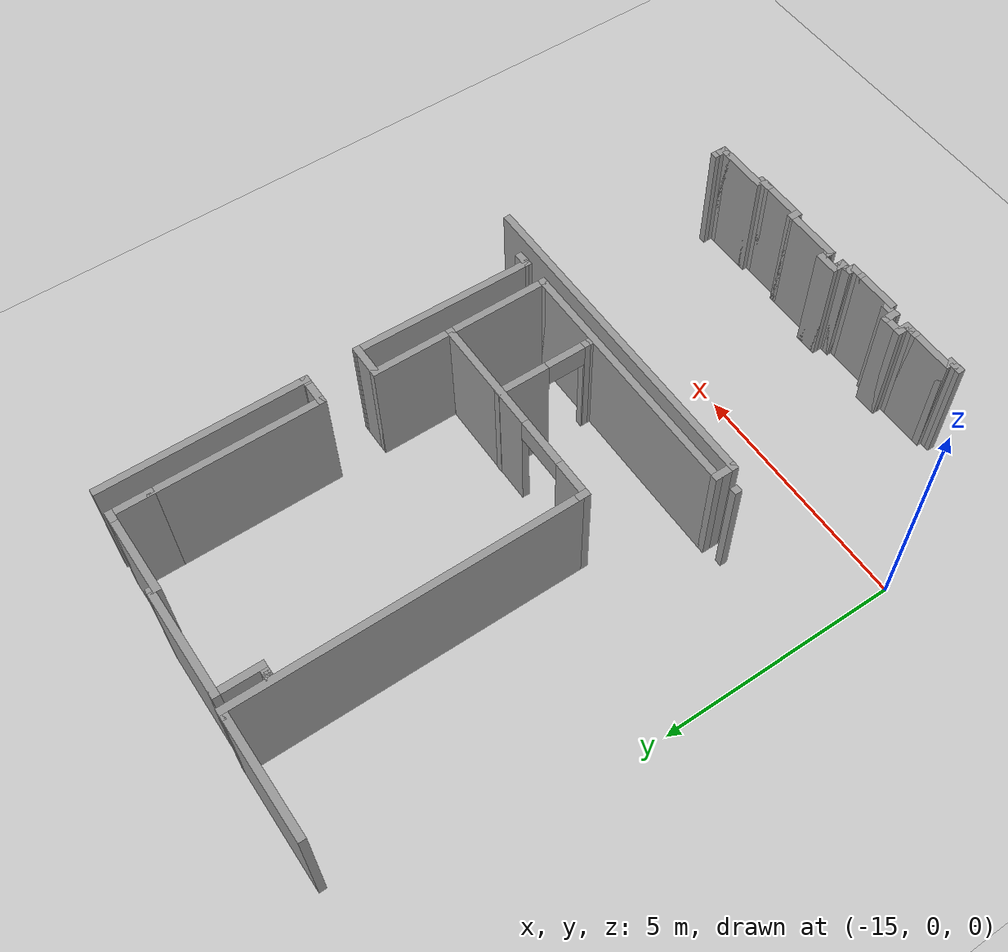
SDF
<sdf version="1.6">
 <world name="default">
  <model name="ground_plane">
   <static>1</static>
   <link name="link">
    <collision name="collision">
     <geometry><plane><normal>0 0 1</normal><size>100 100</size></plane></geometry>
     <surface><friction><ode><mu>100</mu><mu2>50</mu2></ode></friction></surface>
    </collision>
    <visual name="visual">
     <cast_shadows>0</cast_shadows>
     <geometry><plane><normal>0 0 1</normal><size>100 100</size></plane></geometry>
     <material>
      <script><uri>file://media/materials/scripts/gazebo.material</uri><name>Gazebo/Grey</name></script>
     </material>
    </visual>
   </link>
  </model>
  <model name="office_full">
   <pose>-0.417572 -0.704362 0 0 -0 0</pose>
   <link name="Wall_122">
    <collision name="Wall_122_Collision">
     <geometry><box><size>0.5 0.15 2.5</size></box></geometry>
     <pose>0 0 1.25 0 -0 0</pose>
    </collision>
    <visual name="Wall_122_Visual">
     <pose>0 0 1.25 0 -0 0</pose>
     <geometry><box><size>0.5 0.15 2.5</size></box></geometry>
     <material>
      <script><uri>file://media/materials/scripts/gazebo.material</uri><name>Gazebo/Grey</name></script>
      <ambient>1 1 1 1</ambient>
     </material>
    </visual>
    <pose>-12.0043 2.70621 0 0 0 -1.5708</pose>
   </link>
   <link name="Wall_124">
    <collision name="Wall_124_Collision">
     <geometry><box><size>5.25 0.15 2.5</size></box></geometry>
     <pose>0 0 1.25 0 -0 0</pose>
    </collision>
    <visual name="Wall_124_Visual">
     <pose>0 0 1.25 0 -0 0</pose>
     <geometry><box><size>5.25 0.15 2.5</size></box></geometry>
     <material>
      <script><uri>file://media/materials/scripts/gazebo.material</uri><name>Gazebo/Grey</name></script>
      <ambient>1 1 1 1</ambient>
     </material>
    </visual>
    <pose>-9.45432 2.88121 0 0 -0 0</pose>
   </link>
   <link name="Wall_125">
    <collision name="Wall_125_Collision">
     <geometry><box><size>0.25 0.15 2.5</size></box></geometry>
     <pose>0 0 1.25 0 -0 0</pose>
    </collision>
    <visual name="Wall_125_Visual">
     <pose>0 0 1.25 0 -0 0</pose>
     <geometry><box><size>0.25 0.15 2.5</size></box></geometry>
     <material>
      <script><uri>file://media/materials/scripts/gazebo.material</uri><name>Gazebo/Grey</name></script>
      <ambient>1 1 1 1</ambient>
     </material>
    </visual>
    <pose>-6.85432 2.88121 0 0 -0 0</pose>
   </link>
   <link name="Wall_126">
    <collision name="Wall_126_Collision">
     <geometry><box><size>2.2 0.15 2.5</size></box></geometry>
     <pose>0 0 1.25 0 -0 0</pose>
    </collision>
    <visual name="Wall_126_Visual">
     <pose>0 0 1.25 0 -0 0</pose>
     <geometry><box><size>2.2 0.15 2.5</size></box></geometry>
     <material>
      <script><uri>file://media/materials/scripts/gazebo.material</uri><name>Gazebo/Grey</name></script>
      <ambient>1 1 1 1</ambient>
     </material>
    </visual>
    <pose>-6.80432 3.90621 0 0 -0 1.5708</pose>
   </link>
   <link name="Wall_128">
    <pose>-8.4283 4.01499 0 0 0 -1.5708</pose>
    <visual name="Wall_128_Visual_0">
     <pose>-0.459037 0 1.25 0 -0 0</pose>
     <geometry><box><size>1.08193 0.15 2.5</size></box></geometry>
     <material>
      <script><uri>file://media/materials/scripts/gazebo.material</uri><name>Gazebo/Grey</name></script>
      <ambient>1 1 1 1</ambient>
     </material>
    </visual>
    <collision name="Wall_128_Collision_0">
     <geometry><box><size>1.08193 0.15 2.5</size></box></geometry>
     <pose>-0.459037 0 1.25 0 -0 0</pose>
    </collision>
    <visual name="Wall_128_Visual_1">
     <pose>0.93879 0 1.25 0 -0 0</pose>
     <geometry><box><size>0.122421 0.15 2.5</size></box></geometry>
     <material>
      <script><uri>file://media/materials/scripts/gazebo.material</uri><name>Gazebo/Grey</name></script>
      <ambient>1 1 1 1</ambient>
     </material>
    </visual>
    <collision name="Wall_128_Collision_1">
     <geometry><box><size>0.122421 0.15 2.5</size></box></geometry>
     <pose>0.93879 0 1.25 0 -0 0</pose>
    </collision>
    <visual name="Wall_128_Visual_2">
     <pose>0.479753 0 2.25 0 -0 0</pose>
     <geometry><box><size>0.795652 0.15 0.5</size></box></geometry>
     <material>
      <script><uri>file://media/materials/scripts/gazebo.material</uri><name>Gazebo/Grey</name></script>
      <ambient>1 1 1 1</ambient>
     </material>
    </visual>
    <collision name="Wall_128_Collision_2">
     <geometry><box><size>0.795652 0.15 0.5</size></box></geometry>
     <pose>0.479753 0 2.25 0 -0 0</pose>
    </collision>
   </link>
   <link name="Wall_129">
    <collision name="Wall_129_Collision">
     <geometry><box><size>0.25 0.15 2.5</size></box></geometry>
     <pose>0 0 1.25 0 -0 0</pose>
    </collision>
    <visual name="Wall_129_Visual">
     <pose>0 0 1.25 0 -0 0</pose>
     <geometry><box><size>0.25 0.15 2.5</size></box></geometry>
     <material>
      <script><uri>file://media/materials/scripts/gazebo.material</uri><name>Gazebo/Grey</name></script>
      <ambient>1 1 1 1</ambient>
     </material>
    </visual>
    <pose>-8.4283 3.03999 0 0 0 -1.5708</pose>
   </link>
   <link name="Wall_131">
    <collision name="Wall_131_Collision">
     <geometry><box><size>7 0.15 2.5</size></box></geometry>
     <pose>0 0 1.25 0 -0 0</pose>
    </collision>
    <visual name="Wall_131_Visual">
     <pose>0 0 1.25 0 -0 0</pose>
     <geometry><box><size>7 0.15 2.5</size></box></geometry>
     <material>
      <script><uri>file://media/materials/scripts/gazebo.material</uri><name>Gazebo/Grey</name></script>
      <ambient>1 1 1 1</ambient>
     </material>
    </visual>
    <pose>-8.57932 2.53121 0 0 -0 0</pose>
   </link>
   <link name="Wall_136">
    <collision name="Wall_136_Collision">
     <geometry><box><size>0.15 0.15 2.5</size></box></geometry>
     <pose>0 0 1.25 0 -0 0</pose>
    </collision>
    <visual name="Wall_136_Visual">
     <pose>0 0 1.25 0 -0 0</pose>
     <geometry><box><size>0.15 0.15 2.5</size></box></geometry>
     <material>
      <script><uri>file://media/materials/scripts/gazebo.material</uri><name>Gazebo/Grey</name></script>
      <ambient>1 1 1 1</ambient>
     </material>
    </visual>
    <pose>-12.4043 2.78121 0 0 -0 0</pose>
   </link>
   <link name="Wall_182">
    <collision name="Wall_182_Collision">
     <geometry><box><size>0.25 0.15 2.5</size></box></geometry>
     <pose>0 0 1.25 0 -0 0</pose>
    </collision>
    <visual name="Wall_182_Visual">
     <pose>0 0 1.25 0 -0 0</pose>
     <geometry><box><size>0.25 0.15 2.5</size></box></geometry>
     <material>
      <script><uri>file://media/materials/scripts/gazebo.material</uri><name>Gazebo/Grey</name></script>
      <ambient>1 1 1 1</ambient>
     </material>
    </visual>
    <pose>-12.6403 -2.08121 0 0 -0 0</pose>
   </link>
   <link name="Wall_183">
    <collision name="Wall_183_Collision">
     <geometry><box><size>0.25 0.15 2.5</size></box></geometry>
     <pose>0 0 1.25 0 -0 0</pose>
    </collision>
    <visual name="Wall_183_Visual">
     <pose>0 0 1.25 0 -0 0</pose>
     <geometry><box><size>0.25 0.15 2.5</size></box></geometry>
     <material>
      <script><uri>file://media/materials/scripts/gazebo.material</uri><name>Gazebo/Grey</name></script>
      <ambient>1 1 1 1</ambient>
     </material>
    </visual>
    <pose>-12.5403 -2.08121 0 0 -0 0</pose>
   </link>
   <link name="Wall_184">
    <collision name="Wall_184_Collision">
     <geometry><box><size>0.25 0.15 2.5</size></box></geometry>
     <pose>0 0 1.25 0 -0 0</pose>
    </collision>
    <visual name="Wall_184_Visual">
     <pose>0 0 1.25 0 -0 0</pose>
     <geometry><box><size>0.25 0.15 2.5</size></box></geometry>
     <material>
      <script><uri>file://media/materials/scripts/gazebo.material</uri><name>Gazebo/Grey</name></script>
      <ambient>1 1 1 1</ambient>
     </material>
    </visual>
    <pose>-12.4903 -2.03121 0 0 -0 1.5708</pose>
   </link>
   <link name="Wall_185">
    <collision name="Wall_185_Collision">
     <geometry><box><size>1 0.15 2.5</size></box></geometry>
     <pose>0 0 1.25 0 -0 0</pose>
    </collision>
    <visual name="Wall_185_Visual">
     <pose>0 0 1.25 0 -0 0</pose>
     <geometry><box><size>1 0.15 2.5</size></box></geometry>
     <material>
      <script><uri>file://media/materials/scripts/gazebo.material</uri><name>Gazebo/Grey</name></script>
      <ambient>1 1 1 1</ambient>
     </material>
    </visual>
    <pose>-12.0653 -1.98121 0 0 -0 0</pose>
   </link>
   <link name="Wall_186">
    <collision name="Wall_186_Collision">
     <geometry><box><size>0.25 0.15 2.5</size></box></geometry>
     <pose>0 0 1.25 0 -0 0</pose>
    </collision>
    <visual name="Wall_186_Visual">
     <pose>0 0 1.25 0 -0 0</pose>
     <geometry><box><size>0.25 0.15 2.5</size></box></geometry>
     <material>
      <script><uri>file://media/materials/scripts/gazebo.material</uri><name>Gazebo/Grey</name></script>
      <ambient>1 1 1 1</ambient>
     </material>
    </visual>
    <pose>-11.5903 -1.98121 0 0 -0 0</pose>
   </link>
   <link name="Wall_187">
    <collision name="Wall_187_Collision">
     <geometry><box><size>0.25 0.15 2.5</size></box></geometry>
     <pose>0 0 1.25 0 -0 0</pose>
    </collision>
    <visual name="Wall_187_Visual">
     <pose>0 0 1.25 0 -0 0</pose>
     <geometry><box><size>0.25 0.15 2.5</size></box></geometry>
     <material>
      <script><uri>file://media/materials/scripts/gazebo.material</uri><name>Gazebo/Grey</name></script>
      <ambient>1 1 1 1</ambient>
     </material>
    </visual>
    <pose>-11.4903 -1.98121 0 0 -0 0</pose>
   </link>
   <link name="Wall_188">
    <collision name="Wall_188_Collision">
     <geometry><box><size>0.25 0.15 2.5</size></box></geometry>
     <pose>0 0 1.25 0 -0 0</pose>
    </collision>
    <visual name="Wall_188_Visual">
     <pose>0 0 1.25 0 -0 0</pose>
     <geometry><box><size>0.25 0.15 2.5</size></box></geometry>
     <material>
      <script><uri>file://media/materials/scripts/gazebo.material</uri><name>Gazebo/Grey</name></script>
      <ambient>1 1 1 1</ambient>
     </material>
    </visual>
    <pose>-11.4403 -1.93121 0 0 -0 1.5708</pose>
   </link>
   <link name="Wall_189">
    <collision name="Wall_189_Collision">
     <geometry><box><size>0.25 0.15 2.5</size></box></geometry>
     <pose>0 0 1.25 0 -0 0</pose>
    </collision>
    <visual name="Wall_189_Visual">
     <pose>0 0 1.25 0 -0 0</pose>
     <geometry><box><size>0.25 0.15 2.5</size></box></geometry>
     <material>
      <script><uri>file://media/materials/scripts/gazebo.material</uri><name>Gazebo/Grey</name></script>
      <ambient>1 1 1 1</ambient>
     </material>
    </visual>
    <pose>-11.4403 -1.83121 0 0 -0 1.5708</pose>
   </link>
   <link name="Wall_190">
    <collision name="Wall_190_Collision">
     <geometry><box><size>0.5 0.15 2.5</size></box></geometry>
     <pose>0 0 1.25 0 -0 0</pose>
    </collision>
    <visual name="Wall_190_Visual">
     <pose>0 0 1.25 0 -0 0</pose>
     <geometry><box><size>0.5 0.15 2.5</size></box></geometry>
     <material>
      <script><uri>file://media/materials/scripts/gazebo.material</uri><name>Gazebo/Grey</name></script>
      <ambient>1 1 1 1</ambient>
     </material>
    </visual>
    <pose>-11.2653 -1.78121 0 0 -0 0</pose>
   </link>
   <link name="Wall_191">
    <collision name="Wall_191_Collision">
     <geometry><box><size>0.25 0.15 2.5</size></box></geometry>
     <pose>0 0 1.25 0 -0 0</pose>
    </collision>
    <visual name="Wall_191_Visual">
     <pose>0 0 1.25 0 -0 0</pose>
     <geometry><box><size>0.25 0.15 2.5</size></box></geometry>
     <material>
      <script><uri>file://media/materials/scripts/gazebo.material</uri><name>Gazebo/Grey</name></script>
      <ambient>1 1 1 1</ambient>
     </material>
    </visual>
    <pose>-11.0903 -1.83121 0 0 0 -1.5708</pose>
   </link>
   <link name="Wall_192">
    <collision name="Wall_192_Collision">
     <geometry><box><size>0.25 0.15 2.5</size></box></geometry>
     <pose>0 0 1.25 0 -0 0</pose>
    </collision>
    <visual name="Wall_192_Visual">
     <pose>0 0 1.25 0 -0 0</pose>
     <geometry><box><size>0.25 0.15 2.5</size></box></geometry>
     <material>
      <script><uri>file://media/materials/scripts/gazebo.material</uri><name>Gazebo/Grey</name></script>
      <ambient>1 1 1 1</ambient>
     </material>
    </visual>
    <pose>-11.0903 -1.93121 0 0 0 -1.5708</pose>
   </link>
   <link name="Wall_193">
    <collision name="Wall_193_Collision">
     <geometry><box><size>0.25 0.15 2.5</size></box></geometry>
     <pose>0 0 1.25 0 -0 0</pose>
    </collision>
    <visual name="Wall_193_Visual">
     <pose>0 0 1.25 0 -0 0</pose>
     <geometry><box><size>0.25 0.15 2.5</size></box></geometry>
     <material>
      <script><uri>file://media/materials/scripts/gazebo.material</uri><name>Gazebo/Grey</name></script>
      <ambient>1 1 1 1</ambient>
     </material>
    </visual>
    <pose>-11.0403 -1.98121 0 0 -0 0</pose>
   </link>
   <link name="Wall_194">
    <collision name="Wall_194_Collision">
     <geometry><box><size>0.25 0.15 2.5</size></box></geometry>
     <pose>0 0 1.25 0 -0 0</pose>
    </collision>
    <visual name="Wall_194_Visual">
     <pose>0 0 1.25 0 -0 0</pose>
     <geometry><box><size>0.25 0.15 2.5</size></box></geometry>
     <material>
      <script><uri>file://media/materials/scripts/gazebo.material</uri><name>Gazebo/Grey</name></script>
      <ambient>1 1 1 1</ambient>
     </material>
    </visual>
    <pose>-10.9403 -1.98121 0 0 -0 0</pose>
   </link>
   <link name="Wall_195">
    <collision name="Wall_195_Collision">
     <geometry><box><size>0.25 0.15 2.5</size></box></geometry>
     <pose>0 0 1.25 0 -0 0</pose>
    </collision>
    <visual name="Wall_195_Visual">
     <pose>0 0 1.25 0 -0 0</pose>
     <geometry><box><size>0.25 0.15 2.5</size></box></geometry>
     <material>
      <script><uri>file://media/materials/scripts/gazebo.material</uri><name>Gazebo/Grey</name></script>
      <ambient>1 1 1 1</ambient>
     </material>
    </visual>
    <pose>-10.8903 -2.03121 0 0 0 -1.5708</pose>
   </link>
   <link name="Wall_196">
    <collision name="Wall_196_Collision">
     <geometry><box><size>1 0.15 2.5</size></box></geometry>
     <pose>0 0 1.25 0 -0 0</pose>
    </collision>
    <visual name="Wall_196_Visual">
     <pose>0 0 1.25 0 -0 0</pose>
     <geometry><box><size>1 0.15 2.5</size></box></geometry>
     <material>
      <script><uri>file://media/materials/scripts/gazebo.material</uri><name>Gazebo/Grey</name></script>
      <ambient>1 1 1 1</ambient>
     </material>
    </visual>
    <pose>-10.4653 -2.08121 0 0 -0 0</pose>
   </link>
   <link name="Wall_197">
    <collision name="Wall_197_Collision">
     <geometry><box><size>0.25 0.15 2.5</size></box></geometry>
     <pose>0 0 1.25 0 -0 0</pose>
    </collision>
    <visual name="Wall_197_Visual">
     <pose>0 0 1.25 0 -0 0</pose>
     <geometry><box><size>0.25 0.15 2.5</size></box></geometry>
     <material>
      <script><uri>file://media/materials/scripts/gazebo.material</uri><name>Gazebo/Grey</name></script>
      <ambient>1 1 1 1</ambient>
     </material>
    </visual>
    <pose>-9.9903 -2.08121 0 0 -0 0</pose>
   </link>
   <link name="Wall_198">
    <collision name="Wall_198_Collision">
     <geometry><box><size>0.25 0.15 2.5</size></box></geometry>
     <pose>0 0 1.25 0 -0 0</pose>
    </collision>
    <visual name="Wall_198_Visual">
     <pose>0 0 1.25 0 -0 0</pose>
     <geometry><box><size>0.25 0.15 2.5</size></box></geometry>
     <material>
      <script><uri>file://media/materials/scripts/gazebo.material</uri><name>Gazebo/Grey</name></script>
      <ambient>1 1 1 1</ambient>
     </material>
    </visual>
    <pose>-9.8903 -2.08121 0 0 -0 0</pose>
   </link>
   <link name="Wall_199">
    <collision name="Wall_199_Collision">
     <geometry><box><size>0.25 0.15 2.5</size></box></geometry>
     <pose>0 0 1.25 0 -0 0</pose>
    </collision>
    <visual name="Wall_199_Visual">
     <pose>0 0 1.25 0 -0 0</pose>
     <geometry><box><size>0.25 0.15 2.5</size></box></geometry>
     <material>
      <script><uri>file://media/materials/scripts/gazebo.material</uri><name>Gazebo/Grey</name></script>
      <ambient>1 1 1 1</ambient>
     </material>
    </visual>
    <pose>-9.8403 -2.03121 0 0 -0 1.5708</pose>
   </link>
   <link name="Wall_200">
    <collision name="Wall_200_Collision">
     <geometry><box><size>0.25 0.15 2.5</size></box></geometry>
     <pose>0 0 1.25 0 -0 0</pose>
    </collision>
    <visual name="Wall_200_Visual">
     <pose>0 0 1.25 0 -0 0</pose>
     <geometry><box><size>0.25 0.15 2.5</size></box></geometry>
     <material>
      <script><uri>file://media/materials/scripts/gazebo.material</uri><name>Gazebo/Grey</name></script>
      <ambient>1 1 1 1</ambient>
     </material>
    </visual>
    <pose>-9.7903 -1.98121 0 0 -0 0</pose>
   </link>
   <link name="Wall_201">
    <collision name="Wall_201_Collision">
     <geometry><box><size>0.25 0.15 2.5</size></box></geometry>
     <pose>0 0 1.25 0 -0 0</pose>
    </collision>
    <visual name="Wall_201_Visual">
     <pose>0 0 1.25 0 -0 0</pose>
     <geometry><box><size>0.25 0.15 2.5</size></box></geometry>
     <material>
      <script><uri>file://media/materials/scripts/gazebo.material</uri><name>Gazebo/Grey</name></script>
      <ambient>1 1 1 1</ambient>
     </material>
    </visual>
    <pose>-9.6903 -1.98121 0 0 -0 0</pose>
   </link>
   <link name="Wall_202">
    <collision name="Wall_202_Collision">
     <geometry><box><size>0.25 0.15 2.5</size></box></geometry>
     <pose>0 0 1.25 0 -0 0</pose>
    </collision>
    <visual name="Wall_202_Visual">
     <pose>0 0 1.25 0 -0 0</pose>
     <geometry><box><size>0.25 0.15 2.5</size></box></geometry>
     <material>
      <script><uri>file://media/materials/scripts/gazebo.material</uri><name>Gazebo/Grey</name></script>
      <ambient>1 1 1 1</ambient>
     </material>
    </visual>
    <pose>-9.6403 -1.93121 0 0 -0 1.5708</pose>
   </link>
   <link name="Wall_203">
    <collision name="Wall_203_Collision">
     <geometry><box><size>0.25 0.15 2.5</size></box></geometry>
     <pose>0 0 1.25 0 -0 0</pose>
    </collision>
    <visual name="Wall_203_Visual">
     <pose>0 0 1.25 0 -0 0</pose>
     <geometry><box><size>0.25 0.15 2.5</size></box></geometry>
     <material>
      <script><uri>file://media/materials/scripts/gazebo.material</uri><name>Gazebo/Grey</name></script>
      <ambient>1 1 1 1</ambient>
     </material>
    </visual>
    <pose>-9.6403 -1.83121 0 0 -0 1.5708</pose>
   </link>
   <link name="Wall_204">
    <collision name="Wall_204_Collision">
     <geometry><box><size>0.5 0.15 2.5</size></box></geometry>
     <pose>0 0 1.25 0 -0 0</pose>
    </collision>
    <visual name="Wall_204_Visual">
     <pose>0 0 1.25 0 -0 0</pose>
     <geometry><box><size>0.5 0.15 2.5</size></box></geometry>
     <material>
      <script><uri>file://media/materials/scripts/gazebo.material</uri><name>Gazebo/Grey</name></script>
      <ambient>1 1 1 1</ambient>
     </material>
    </visual>
    <pose>-9.4653 -1.78121 0 0 -0 0</pose>
   </link>
   <link name="Wall_205">
    <collision name="Wall_205_Collision">
     <geometry><box><size>0.25 0.15 2.5</size></box></geometry>
     <pose>0 0 1.25 0 -0 0</pose>
    </collision>
    <visual name="Wall_205_Visual">
     <pose>0 0 1.25 0 -0 0</pose>
     <geometry><box><size>0.25 0.15 2.5</size></box></geometry>
     <material>
      <script><uri>file://media/materials/scripts/gazebo.material</uri><name>Gazebo/Grey</name></script>
      <ambient>1 1 1 1</ambient>
     </material>
    </visual>
    <pose>-9.2903 -1.83121 0 0 0 -1.5708</pose>
   </link>
   <link name="Wall_206">
    <collision name="Wall_206_Collision">
     <geometry><box><size>0.25 0.15 2.5</size></box></geometry>
     <pose>0 0 1.25 0 -0 0</pose>
    </collision>
    <visual name="Wall_206_Visual">
     <pose>0 0 1.25 0 -0 0</pose>
     <geometry><box><size>0.25 0.15 2.5</size></box></geometry>
     <material>
      <script><uri>file://media/materials/scripts/gazebo.material</uri><name>Gazebo/Grey</name></script>
      <ambient>1 1 1 1</ambient>
     </material>
    </visual>
    <pose>-9.2903 -1.93121 0 0 0 -1.5708</pose>
   </link>
   <link name="Wall_207">
    <collision name="Wall_207_Collision">
     <geometry><box><size>1.25 0.15 2.5</size></box></geometry>
     <pose>0 0 1.25 0 -0 0</pose>
    </collision>
    <visual name="Wall_207_Visual">
     <pose>0 0 1.25 0 -0 0</pose>
     <geometry><box><size>1.25 0.15 2.5</size></box></geometry>
     <material>
      <script><uri>file://media/materials/scripts/gazebo.material</uri><name>Gazebo/Grey</name></script>
      <ambient>1 1 1 1</ambient>
     </material>
    </visual>
    <pose>-8.7403 -1.98121 0 0 -0 0</pose>
   </link>
   <link name="Wall_208">
    <collision name="Wall_208_Collision">
     <geometry><box><size>0.25 0.15 2.5</size></box></geometry>
     <pose>0 0 1.25 0 -0 0</pose>
    </collision>
    <visual name="Wall_208_Visual">
     <pose>0 0 1.25 0 -0 0</pose>
     <geometry><box><size>0.25 0.15 2.5</size></box></geometry>
     <material>
      <script><uri>file://media/materials/scripts/gazebo.material</uri><name>Gazebo/Grey</name></script>
      <ambient>1 1 1 1</ambient>
     </material>
    </visual>
    <pose>-8.1903 -2.03121 0 0 0 -1.5708</pose>
   </link>
   <link name="Wall_209">
    <collision name="Wall_209_Collision">
     <geometry><box><size>1 0.15 2.5</size></box></geometry>
     <pose>0 0 1.25 0 -0 0</pose>
    </collision>
    <visual name="Wall_209_Visual">
     <pose>0 0 1.25 0 -0 0</pose>
     <geometry><box><size>1 0.15 2.5</size></box></geometry>
     <material>
      <script><uri>file://media/materials/scripts/gazebo.material</uri><name>Gazebo/Grey</name></script>
      <ambient>1 1 1 1</ambient>
     </material>
    </visual>
    <pose>-7.7653 -2.08121 0 0 -0 0</pose>
   </link>
   <link name="Wall_210">
    <collision name="Wall_210_Collision">
     <geometry><box><size>0.25 0.15 2.5</size></box></geometry>
     <pose>0 0 1.25 0 -0 0</pose>
    </collision>
    <visual name="Wall_210_Visual">
     <pose>0 0 1.25 0 -0 0</pose>
     <geometry><box><size>0.25 0.15 2.5</size></box></geometry>
     <material>
      <script><uri>file://media/materials/scripts/gazebo.material</uri><name>Gazebo/Grey</name></script>
      <ambient>1 1 1 1</ambient>
     </material>
    </visual>
    <pose>-7.2903 -2.08121 0 0 -0 0</pose>
   </link>
   <link name="Wall_211">
    <collision name="Wall_211_Collision">
     <geometry><box><size>0.25 0.15 2.5</size></box></geometry>
     <pose>0 0 1.25 0 -0 0</pose>
    </collision>
    <visual name="Wall_211_Visual">
     <pose>0 0 1.25 0 -0 0</pose>
     <geometry><box><size>0.25 0.15 2.5</size></box></geometry>
     <material>
      <script><uri>file://media/materials/scripts/gazebo.material</uri><name>Gazebo/Grey</name></script>
      <ambient>1 1 1 1</ambient>
     </material>
    </visual>
    <pose>-7.1903 -2.08121 0 0 -0 0</pose>
   </link>
   <link name="Wall_212">
    <collision name="Wall_212_Collision">
     <geometry><box><size>0.25 0.15 2.5</size></box></geometry>
     <pose>0 0 1.25 0 -0 0</pose>
    </collision>
    <visual name="Wall_212_Visual">
     <pose>0 0 1.25 0 -0 0</pose>
     <geometry><box><size>0.25 0.15 2.5</size></box></geometry>
     <material>
      <script><uri>file://media/materials/scripts/gazebo.material</uri><name>Gazebo/Grey</name></script>
      <ambient>1 1 1 1</ambient>
     </material>
    </visual>
    <pose>-7.1403 -2.03121 0 0 -0 1.5708</pose>
   </link>
   <link name="Wall_213">
    <collision name="Wall_213_Collision">
     <geometry><box><size>1 0.15 2.5</size></box></geometry>
     <pose>0 0 1.25 0 -0 0</pose>
    </collision>
    <visual name="Wall_213_Visual">
     <pose>0 0 1.25 0 -0 0</pose>
     <geometry><box><size>1 0.15 2.5</size></box></geometry>
     <material>
      <script><uri>file://media/materials/scripts/gazebo.material</uri><name>Gazebo/Grey</name></script>
      <ambient>1 1 1 1</ambient>
     </material>
    </visual>
    <pose>-6.7153 -1.98121 0 0 -0 0</pose>
   </link>
   <link name="Wall_214">
    <collision name="Wall_214_Collision">
     <geometry><box><size>0.25 0.15 2.5</size></box></geometry>
     <pose>0 0 1.25 0 -0 0</pose>
    </collision>
    <visual name="Wall_214_Visual">
     <pose>0 0 1.25 0 -0 0</pose>
     <geometry><box><size>0.25 0.15 2.5</size></box></geometry>
     <material>
      <script><uri>file://media/materials/scripts/gazebo.material</uri><name>Gazebo/Grey</name></script>
      <ambient>1 1 1 1</ambient>
     </material>
    </visual>
    <pose>-6.2403 -1.98121 0 0 -0 0</pose>
   </link>
   <link name="Wall_215">
    <collision name="Wall_215_Collision">
     <geometry><box><size>0.25 0.15 2.5</size></box></geometry>
     <pose>0 0 1.25 0 -0 0</pose>
    </collision>
    <visual name="Wall_215_Visual">
     <pose>0 0 1.25 0 -0 0</pose>
     <geometry><box><size>0.25 0.15 2.5</size></box></geometry>
     <material>
      <script><uri>file://media/materials/scripts/gazebo.material</uri><name>Gazebo/Grey</name></script>
      <ambient>1 1 1 1</ambient>
     </material>
    </visual>
    <pose>-6.1403 -1.98121 0 0 -0 0</pose>
   </link>
   <link name="Wall_216">
    <collision name="Wall_216_Collision">
     <geometry><box><size>0.25 0.15 2.5</size></box></geometry>
     <pose>0 0 1.25 0 -0 0</pose>
    </collision>
    <visual name="Wall_216_Visual">
     <pose>0 0 1.25 0 -0 0</pose>
     <geometry><box><size>0.25 0.15 2.5</size></box></geometry>
     <material>
      <script><uri>file://media/materials/scripts/gazebo.material</uri><name>Gazebo/Grey</name></script>
      <ambient>1 1 1 1</ambient>
     </material>
    </visual>
    <pose>-6.0903 -1.93121 0 0 -0 1.5708</pose>
   </link>
   <link name="Wall_217">
    <collision name="Wall_217_Collision">
     <geometry><box><size>0.25 0.15 2.5</size></box></geometry>
     <pose>0 0 1.25 0 -0 0</pose>
    </collision>
    <visual name="Wall_217_Visual">
     <pose>0 0 1.25 0 -0 0</pose>
     <geometry><box><size>0.25 0.15 2.5</size></box></geometry>
     <material>
      <script><uri>file://media/materials/scripts/gazebo.material</uri><name>Gazebo/Grey</name></script>
      <ambient>1 1 1 1</ambient>
     </material>
    </visual>
    <pose>-6.0903 -1.83121 0 0 -0 1.5708</pose>
   </link>
   <link name="Wall_311">
    <collision name="Wall_311_Collision">
     <geometry><box><size>3.5 0.15 2.5</size></box></geometry>
     <pose>0 0 1.25 0 -0 0</pose>
    </collision>
    <visual name="Wall_311_Visual">
     <pose>0 0 1.25 0 -0 0</pose>
     <geometry><box><size>3.5 0.15 2.5</size></box></geometry>
     <material>
      <script><uri>file://media/materials/scripts/gazebo.material</uri><name>Gazebo/Grey</name></script>
      <ambient>1 1 1 1</ambient>
     </material>
    </visual>
    <pose>-6.79202 9.31471 0 0 0 -1.5708</pose>
   </link>
   <link name="Wall_312">
    <collision name="Wall_312_Collision">
     <geometry><box><size>0.5 0.15 2.5</size></box></geometry>
     <pose>0 0 1.25 0 -0 0</pose>
    </collision>
    <visual name="Wall_312_Visual">
     <pose>0 0 1.25 0 -0 0</pose>
     <geometry><box><size>0.5 0.15 2.5</size></box></geometry>
     <material>
      <script><uri>file://media/materials/scripts/gazebo.material</uri><name>Gazebo/Grey</name></script>
      <ambient>1 1 1 1</ambient>
     </material>
    </visual>
    <pose>-6.61702 7.63971 0 0 -0 0</pose>
   </link>
   <link name="Wall_313">
    <collision name="Wall_313_Collision">
     <geometry><box><size>0.25 0.15 2.5</size></box></geometry>
     <pose>0 0 1.25 0 -0 0</pose>
    </collision>
    <visual name="Wall_313_Visual">
     <pose>0 0 1.25 0 -0 0</pose>
     <geometry><box><size>0.25 0.15 2.5</size></box></geometry>
     <material>
      <script><uri>file://media/materials/scripts/gazebo.material</uri><name>Gazebo/Grey</name></script>
      <ambient>1 1 1 1</ambient>
     </material>
    </visual>
    <pose>-6.39202 7.63971 0 0 -0 0</pose>
   </link>
   <link name="Wall_314">
    <collision name="Wall_314_Collision">
     <geometry><box><size>0.25 0.15 2.5</size></box></geometry>
     <pose>0 0 1.25 0 -0 0</pose>
    </collision>
    <visual name="Wall_314_Visual">
     <pose>0 0 1.25 0 -0 0</pose>
     <geometry><box><size>0.25 0.15 2.5</size></box></geometry>
     <material>
      <script><uri>file://media/materials/scripts/gazebo.material</uri><name>Gazebo/Grey</name></script>
      <ambient>1 1 1 1</ambient>
     </material>
    </visual>
    <pose>-6.29202 7.63971 0 0 -0 0</pose>
   </link>
   <link name="Wall_315">
    <collision name="Wall_315_Collision">
     <geometry><box><size>4.25 0.15 2.5</size></box></geometry>
     <pose>0 0 1.25 0 -0 0</pose>
    </collision>
    <visual name="Wall_315_Visual">
     <pose>0 0 1.25 0 -0 0</pose>
     <geometry><box><size>4.25 0.15 2.5</size></box></geometry>
     <material>
      <script><uri>file://media/materials/scripts/gazebo.material</uri><name>Gazebo/Grey</name></script>
      <ambient>1 1 1 1</ambient>
     </material>
    </visual>
    <pose>-6.24202 9.68971 0 0 -0 1.5708</pose>
   </link>
   <link name="Wall_347">
    <collision name="Wall_347_Collision">
     <geometry><box><size>1.75 0.15 2.5</size></box></geometry>
     <pose>0 0 1.25 0 -0 0</pose>
    </collision>
    <visual name="Wall_347_Visual">
     <pose>0 0 1.25 0 -0 0</pose>
     <geometry><box><size>1.75 0.15 2.5</size></box></geometry>
     <material>
      <script><uri>file://media/materials/scripts/gazebo.material</uri><name>Gazebo/Grey</name></script>
      <ambient>1 1 1 1</ambient>
     </material>
    </visual>
    <pose>-6.80432 5.73121 0 0 -0 1.5708</pose>
   </link>
   <link name="Wall_348">
    <collision name="Wall_348_Collision">
     <geometry><box><size>0.75 0.15 2.5</size></box></geometry>
     <pose>0 0 1.25 0 -0 0</pose>
    </collision>
    <visual name="Wall_348_Visual">
     <pose>0 0 1.25 0 -0 0</pose>
     <geometry><box><size>0.75 0.15 2.5</size></box></geometry>
     <material>
      <script><uri>file://media/materials/scripts/gazebo.material</uri><name>Gazebo/Grey</name></script>
      <ambient>1 1 1 1</ambient>
     </material>
    </visual>
    <pose>-6.50432 6.53121 0 0 -0 0</pose>
   </link>
   <link name="Wall_365">
    <collision name="Wall_365_Collision">
     <geometry><box><size>0.25 0.15 2.5</size></box></geometry>
     <pose>0 0 1.25 0 -0 0</pose>
    </collision>
    <visual name="Wall_365_Visual">
     <pose>0 0 1.25 0 -0 0</pose>
     <geometry><box><size>0.25 0.15 2.5</size></box></geometry>
     <material>
      <script><uri>file://media/materials/scripts/gazebo.material</uri><name>Gazebo/Grey</name></script>
      <ambient>1 1 1 1</ambient>
     </material>
    </visual>
    <pose>-6.10432 2.88121 0 0 -0 3.14159</pose>
   </link>
   <link name="Wall_366">
    <collision name="Wall_366_Collision">
     <geometry><box><size>0.25 0.15 2.5</size></box></geometry>
     <pose>0 0 1.25 0 -0 0</pose>
    </collision>
    <visual name="Wall_366_Visual">
     <pose>0 0 1.25 0 -0 0</pose>
     <geometry><box><size>0.25 0.15 2.5</size></box></geometry>
     <material>
      <script><uri>file://media/materials/scripts/gazebo.material</uri><name>Gazebo/Grey</name></script>
      <ambient>1 1 1 1</ambient>
     </material>
    </visual>
    <pose>-6.20432 2.88121 0 0 -0 3.14159</pose>
   </link>
   <link name="Wall_367">
    <collision name="Wall_367_Collision">
     <geometry><box><size>3.80034 0.15 2.5</size></box></geometry>
     <pose>0 0 1.25 0 -0 0</pose>
    </collision>
    <visual name="Wall_367_Visual">
     <pose>0 0 1.25 0 -0 0</pose>
     <geometry><box><size>3.80034 0.15 2.5</size></box></geometry>
     <material>
      <script><uri>file://media/materials/scripts/gazebo.material</uri><name>Gazebo/Grey</name></script>
      <ambient>1 1 1 1</ambient>
     </material>
    </visual>
    <pose>-6.22932 4.70621 0 0 -0 1.5571</pose>
   </link>
   <link name="Wall_59">
    <collision name="Wall_59_Collision">
     <geometry><box><size>2.5 0.15 2.5</size></box></geometry>
     <pose>0 0 1.25 0 -0 0</pose>
    </collision>
    <visual name="Wall_59_Visual">
     <pose>0 0 1.25 0 -0 0</pose>
     <geometry><box><size>2.5 0.15 2.5</size></box></geometry>
     <material>
      <script><uri>file://media/materials/scripts/gazebo.material</uri><name>Gazebo/Grey</name></script>
      <ambient>1 1 1 1</ambient>
     </material>
    </visual>
    <pose>-12.2793 11.8812 0 0 -0 0</pose>
   </link>
   <link name="Wall_60">
    <collision name="Wall_60_Collision">
     <geometry><box><size>0.25 0.15 2.5</size></box></geometry>
     <pose>0 0 1.25 0 -0 0</pose>
    </collision>
    <visual name="Wall_60_Visual">
     <pose>0 0 1.25 0 -0 0</pose>
     <geometry><box><size>0.25 0.15 2.5</size></box></geometry>
     <material>
      <script><uri>file://media/materials/scripts/gazebo.material</uri><name>Gazebo/Grey</name></script>
      <ambient>1 1 1 1</ambient>
     </material>
    </visual>
    <pose>-11.0543 11.8812 0 0 -0 0</pose>
   </link>
   <link name="Wall_61">
    <collision name="Wall_61_Collision">
     <geometry><box><size>7 0.15 2.5</size></box></geometry>
     <pose>0 0 1.25 0 -0 0</pose>
    </collision>
    <visual name="Wall_61_Visual">
     <pose>0 0 1.25 0 -0 0</pose>
     <geometry><box><size>7 0.15 2.5</size></box></geometry>
     <material>
      <script><uri>file://media/materials/scripts/gazebo.material</uri><name>Gazebo/Grey</name></script>
      <ambient>1 1 1 1</ambient>
     </material>
    </visual>
    <pose>-11.0043 8.45621 0 0 0 -1.5708</pose>
   </link>
   <link name="Wall_62">
    <collision name="Wall_62_Collision">
     <geometry><box><size>0.25 0.15 2.5</size></box></geometry>
     <pose>0 0 1.25 0 -0 0</pose>
    </collision>
    <visual name="Wall_62_Visual">
     <pose>0 0 1.25 0 -0 0</pose>
     <geometry><box><size>0.25 0.15 2.5</size></box></geometry>
     <material>
      <script><uri>file://media/materials/scripts/gazebo.material</uri><name>Gazebo/Grey</name></script>
      <ambient>1 1 1 1</ambient>
     </material>
    </visual>
    <pose>-11.0043 4.98121 0 0 0 -1.5708</pose>
   </link>
   <link name="Wall_68">
    <collision name="Wall_68_Collision">
     <geometry><box><size>0.25 0.15 2.5</size></box></geometry>
     <pose>0 0 1.25 0 -0 0</pose>
    </collision>
    <visual name="Wall_68_Visual">
     <pose>0 0 1.25 0 -0 0</pose>
     <geometry><box><size>0.25 0.15 2.5</size></box></geometry>
     <material>
      <script><uri>file://media/materials/scripts/gazebo.material</uri><name>Gazebo/Grey</name></script>
      <ambient>1 1 1 1</ambient>
     </material>
    </visual>
    <pose>-10.942 10.9897 0 0 -0 0</pose>
   </link>
   <link name="Wall_69">
    <collision name="Wall_69_Collision">
     <geometry><box><size>0.25 0.15 2.5</size></box></geometry>
     <pose>0 0 1.25 0 -0 0</pose>
    </collision>
    <visual name="Wall_69_Visual">
     <pose>0 0 1.25 0 -0 0</pose>
     <geometry><box><size>0.25 0.15 2.5</size></box></geometry>
     <material>
      <script><uri>file://media/materials/scripts/gazebo.material</uri><name>Gazebo/Grey</name></script>
      <ambient>1 1 1 1</ambient>
     </material>
    </visual>
    <pose>-10.842 10.9897 0 0 -0 0</pose>
   </link>
   <link name="Wall_70">
    <collision name="Wall_70_Collision">
     <geometry><box><size>0.25 0.15 2.5</size></box></geometry>
     <pose>0 0 1.25 0 -0 0</pose>
    </collision>
    <visual name="Wall_70_Visual">
     <pose>0 0 1.25 0 -0 0</pose>
     <geometry><box><size>0.25 0.15 2.5</size></box></geometry>
     <material>
      <script><uri>file://media/materials/scripts/gazebo.material</uri><name>Gazebo/Grey</name></script>
      <ambient>1 1 1 1</ambient>
     </material>
    </visual>
    <pose>-10.742 10.9897 0 0 -0 0</pose>
   </link>
   <link name="Wall_71">
    <collision name="Wall_71_Collision">
     <geometry><box><size>1 0.15 2.5</size></box></geometry>
     <pose>0 0 1.25 0 -0 0</pose>
    </collision>
    <visual name="Wall_71_Visual">
     <pose>0 0 1.25 0 -0 0</pose>
     <geometry><box><size>1 0.15 2.5</size></box></geometry>
     <material>
      <script><uri>file://media/materials/scripts/gazebo.material</uri><name>Gazebo/Grey</name></script>
      <ambient>1 1 1 1</ambient>
     </material>
    </visual>
    <pose>-10.692 11.4147 0 0 -0 1.5708</pose>
   </link>
   <link name="Wall_74">
    <collision name="Wall_74_Collision">
     <geometry><box><size>2.25 0.15 2.5</size></box></geometry>
     <pose>0 0 1.25 0 -0 0</pose>
    </collision>
    <visual name="Wall_74_Visual">
     <pose>0 0 1.25 0 -0 0</pose>
     <geometry><box><size>2.25 0.15 2.5</size></box></geometry>
     <material>
      <script><uri>file://media/materials/scripts/gazebo.material</uri><name>Gazebo/Grey</name></script>
      <ambient>1 1 1 1</ambient>
     </material>
    </visual>
    <pose>-9.64202 11.8397 0 0 -0 0</pose>
   </link>
   <link name="Wall_75">
    <collision name="Wall_75_Collision">
     <geometry><box><size>0.25 0.15 2.5</size></box></geometry>
     <pose>0 0 1.25 0 -0 0</pose>
    </collision>
    <visual name="Wall_75_Visual">
     <pose>0 0 1.25 0 -0 0</pose>
     <geometry><box><size>0.25 0.15 2.5</size></box></geometry>
     <material>
      <script><uri>file://media/materials/scripts/gazebo.material</uri><name>Gazebo/Grey</name></script>
      <ambient>1 1 1 1</ambient>
     </material>
    </visual>
    <pose>-8.54202 11.8397 0 0 -0 0</pose>
   </link>
   <link name="Wall_80">
    <pose>-8.95432 4.93121 0 0 -0 0</pose>
    <visual name="Wall_80_Visual_0">
     <pose>-1.70697 0 1.25 0 -0 0</pose>
     <geometry><box><size>0.836069 0.15 2.5</size></box></geometry>
     <material>
      <script><uri>file://media/materials/scripts/gazebo.material</uri><name>Gazebo/Grey</name></script>
      <ambient>1 1 1 1</ambient>
     </material>
    </visual>
    <collision name="Wall_80_Collision_0">
     <geometry><box><size>0.836069 0.15 2.5</size></box></geometry>
     <pose>-1.70697 0 1.25 0 -0 0</pose>
    </collision>
    <visual name="Wall_80_Visual_1">
     <pose>0.9376 0 1.25 0 -0 0</pose>
     <geometry><box><size>2.3748 0.15 2.5</size></box></geometry>
     <material>
      <script><uri>file://media/materials/scripts/gazebo.material</uri><name>Gazebo/Grey</name></script>
      <ambient>1 1 1 1</ambient>
     </material>
    </visual>
    <collision name="Wall_80_Collision_1">
     <geometry><box><size>2.3748 0.15 2.5</size></box></geometry>
     <pose>0.9376 0 1.25 0 -0 0</pose>
    </collision>
    <visual name="Wall_80_Visual_2">
     <pose>-0.769366 0 2.25 0 -0 0</pose>
     <geometry><box><size>1.03913 0.15 0.5</size></box></geometry>
     <material>
      <script><uri>file://media/materials/scripts/gazebo.material</uri><name>Gazebo/Grey</name></script>
      <ambient>1 1 1 1</ambient>
     </material>
    </visual>
    <collision name="Wall_80_Collision_2">
     <geometry><box><size>1.03913 0.15 0.5</size></box></geometry>
     <pose>-0.769366 0 2.25 0 -0 0</pose>
    </collision>
   </link>
   <link name="Wall_81">
    <collision name="Wall_81_Collision">
     <geometry><box><size>0.25 0.15 2.5</size></box></geometry>
     <pose>0 0 1.25 0 -0 0</pose>
    </collision>
    <visual name="Wall_81_Visual">
     <pose>0 0 1.25 0 -0 0</pose>
     <geometry><box><size>0.25 0.15 2.5</size></box></geometry>
     <material>
      <script><uri>file://media/materials/scripts/gazebo.material</uri><name>Gazebo/Grey</name></script>
      <ambient>1 1 1 1</ambient>
     </material>
    </visual>
    <pose>-6.85432 4.93121 0 0 -0 0</pose>
   </link>
   <link name="Wall_89">
    <collision name="Wall_89_Collision">
     <geometry><box><size>0.25 0.15 2.5</size></box></geometry>
     <pose>0 0 1.25 0 -0 0</pose>
    </collision>
    <visual name="Wall_89_Visual">
     <pose>0 0 1.25 0 -0 0</pose>
     <geometry><box><size>0.25 0.15 2.5</size></box></geometry>
     <material>
      <script><uri>file://media/materials/scripts/gazebo.material</uri><name>Gazebo/Grey</name></script>
      <ambient>1 1 1 1</ambient>
     </material>
    </visual>
    <pose>-8.54202 11.8397 0 0 -0 0</pose>
   </link>
   <link name="Wall_90">
    <collision name="Wall_90_Collision">
     <geometry><box><size>0.25 0.15 2.5</size></box></geometry>
     <pose>0 0 1.25 0 -0 0</pose>
    </collision>
    <visual name="Wall_90_Visual">
     <pose>0 0 1.25 0 -0 0</pose>
     <geometry><box><size>0.25 0.15 2.5</size></box></geometry>
     <material>
      <script><uri>file://media/materials/scripts/gazebo.material</uri><name>Gazebo/Grey</name></script>
      <ambient>1 1 1 1</ambient>
     </material>
    </visual>
    <pose>-8.49202 11.7897 0 0 0 -1.5708</pose>
   </link>
   <link name="Wall_91">
    <collision name="Wall_91_Collision">
     <geometry><box><size>1.75 0.15 2.5</size></box></geometry>
     <pose>0 0 1.25 0 -0 0</pose>
    </collision>
    <visual name="Wall_91_Visual">
     <pose>0 0 1.25 0 -0 0</pose>
     <geometry><box><size>1.75 0.15 2.5</size></box></geometry>
     <material>
      <script><uri>file://media/materials/scripts/gazebo.material</uri><name>Gazebo/Grey</name></script>
      <ambient>1 1 1 1</ambient>
     </material>
    </visual>
    <pose>-7.69202 11.7397 0 0 -0 0</pose>
   </link>
   <link name="Wall_92">
    <collision name="Wall_92_Collision">
     <geometry><box><size>0.25 0.15 2.5</size></box></geometry>
     <pose>0 0 1.25 0 -0 0</pose>
    </collision>
    <visual name="Wall_92_Visual">
     <pose>0 0 1.25 0 -0 0</pose>
     <geometry><box><size>0.25 0.15 2.5</size></box></geometry>
     <material>
      <script><uri>file://media/materials/scripts/gazebo.material</uri><name>Gazebo/Grey</name></script>
      <ambient>1 1 1 1</ambient>
     </material>
    </visual>
    <pose>-6.84202 11.7397 0 0 -0 0</pose>
   </link>
   <link name="Wall_93">
    <collision name="Wall_93_Collision">
     <geometry><box><size>0.9 0.15 2.5</size></box></geometry>
     <pose>0 0 1.25 0 -0 0</pose>
    </collision>
    <visual name="Wall_93_Visual">
     <pose>0 0 1.25 0 -0 0</pose>
     <geometry><box><size>0.9 0.15 2.5</size></box></geometry>
     <material>
      <script><uri>file://media/materials/scripts/gazebo.material</uri><name>Gazebo/Grey</name></script>
      <ambient>1 1 1 1</ambient>
     </material>
    </visual>
    <pose>-6.79202 11.3647 0 0 0 -1.5708</pose>
   </link>
   <static>1</static>
  </model>
 </world>
</sdf>
